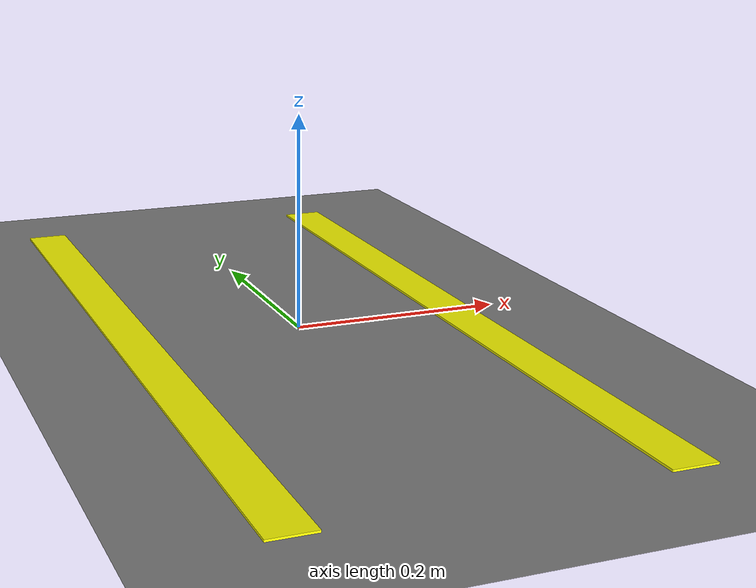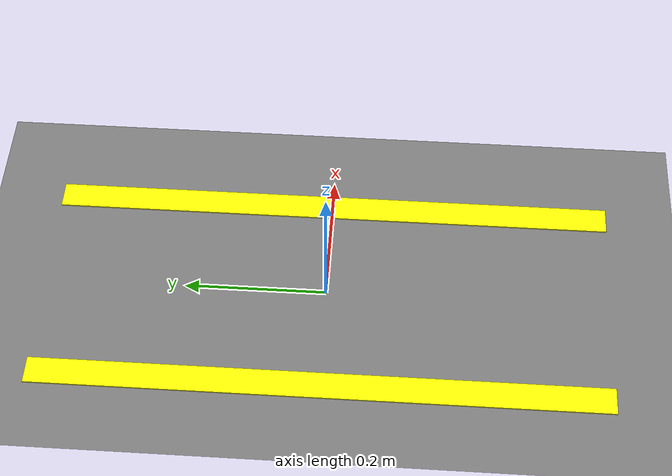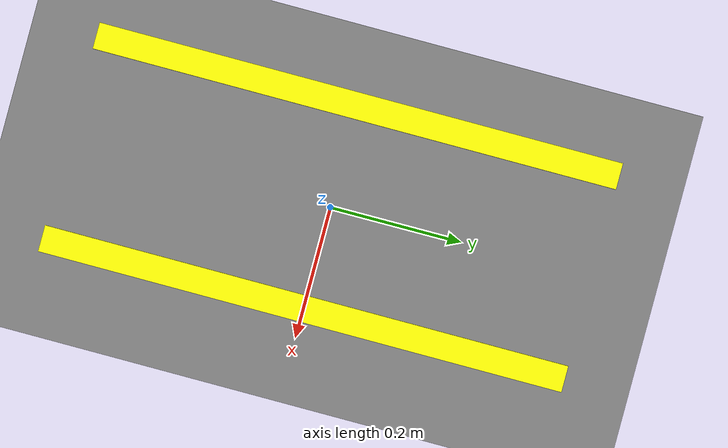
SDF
<?xml version="1.0" ?>
<sdf version="1.8">
  <world name="parking_world">

    <plugin filename="ignition-gazebo-physics-system" name="ignition::gazebo::systems::Physics"></plugin>
    <plugin filename="ignition-gazebo-scene-broadcaster-system" name="ignition::gazebo::systems::SceneBroadcaster"></plugin>
    <plugin filename="ignition-gazebo-sensors-system" name="ignition::gazebo::systems::Sensors">
      <render_engine>ogre2</render_engine>
    </plugin>

    <light type="directional" name="sun">
      <cast_shadows>true</cast_shadows>
      <pose>0 0 10 0 0 0</pose>
      <diffuse>0.8 0.8 0.8 1</diffuse>
      <specular>0.2 0.2 0.2 1</specular>
      <direction>-0.5 0.1 -0.9</direction>
    </light>

    <model name="ground_plane">
      <static>true</static>
      <link name="link">
        <visual name="visual">
          <geometry><plane><normal>0 0 1</normal><size>10 10</size></plane></geometry>
          <material><ambient>0.5 0.5 0.5 1</ambient><diffuse>0.5 0.5 0.5 1</diffuse></material>
        </visual>
      </link>
    </model>

   <model name="left_line">
      <static>true</static>
      <pose>0.155 0 0.001 0 0 0</pose>
      <link name="link">
        <visual name="visual">
          <geometry><box><size>0.04 0.8 0.002</size></box></geometry>
          <material><ambient>1 1 0 1</ambient><diffuse>1 1 0 1</diffuse></material>
        </visual>
      </link>
    </model>

    <model name="right_line">
      <static>true</static>
      <pose>-0.155 0 0.001 0 0 0</pose>
      <link name="link">
        <visual name="visual">
          <geometry><box><size>0.04 0.8 0.002</size></box></geometry>
          <material><ambient>1 1 0 1</ambient><diffuse>1 1 0 1</diffuse></material>
        </visual>
      </link>
    </model>

    <model name="virtual_camera">
      <static>true</static>
      <pose>0 0.5 0.3 0 0.2 -1.57</pose>
      <link name="camera_link">
        <sensor name="side_camera" type="camera">
          <topic>side_cam/image_raw</topic> <camera>
            <horizontal_fov>1.396</horizontal_fov>
            <image>
              <width>640</width>
              <height>480</height>
            </image>
            <clip><near>0.1</near><far>100</far></clip>
          </camera>
          <always_on>1</always_on>
          <update_rate>30</update_rate>
          <visualize>true</visualize>
        </sensor>
      </link>
    </model>

  </world>
</sdf>
